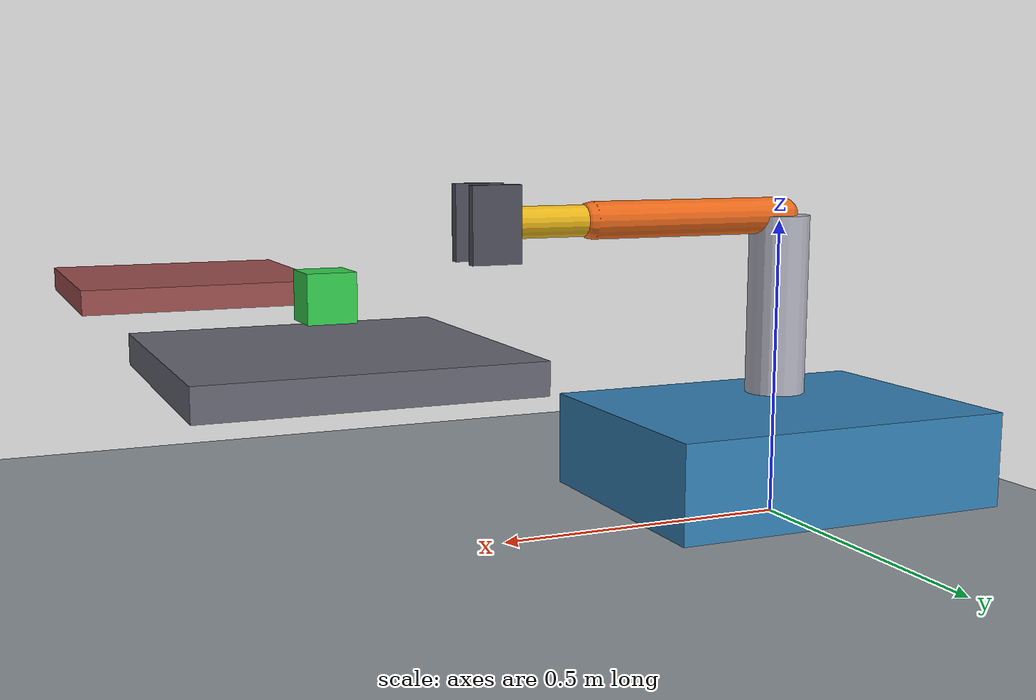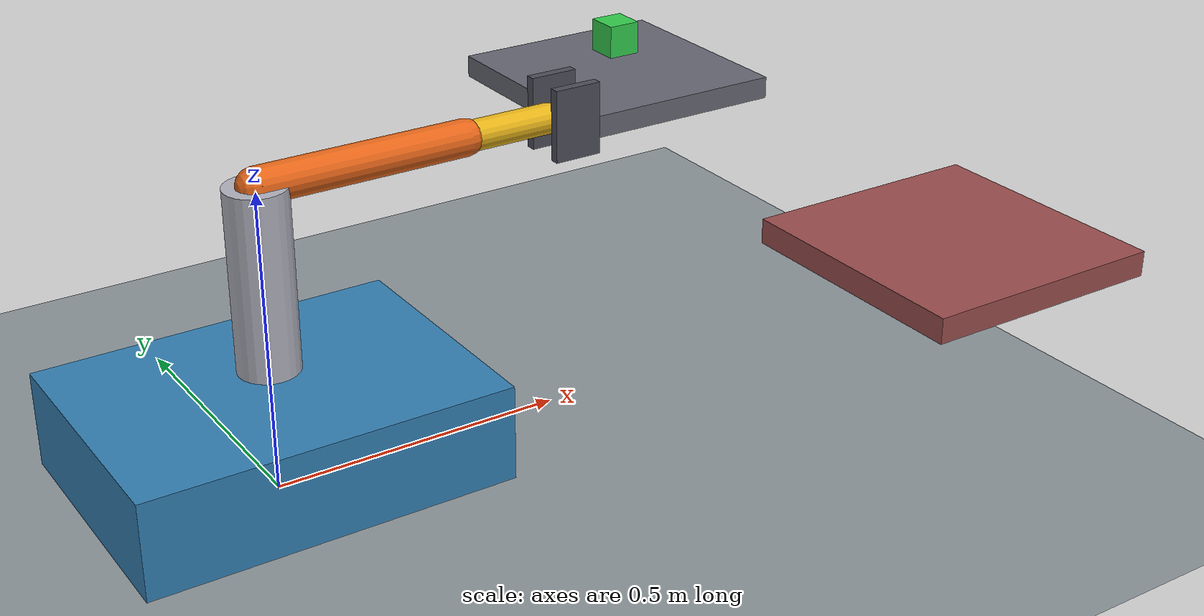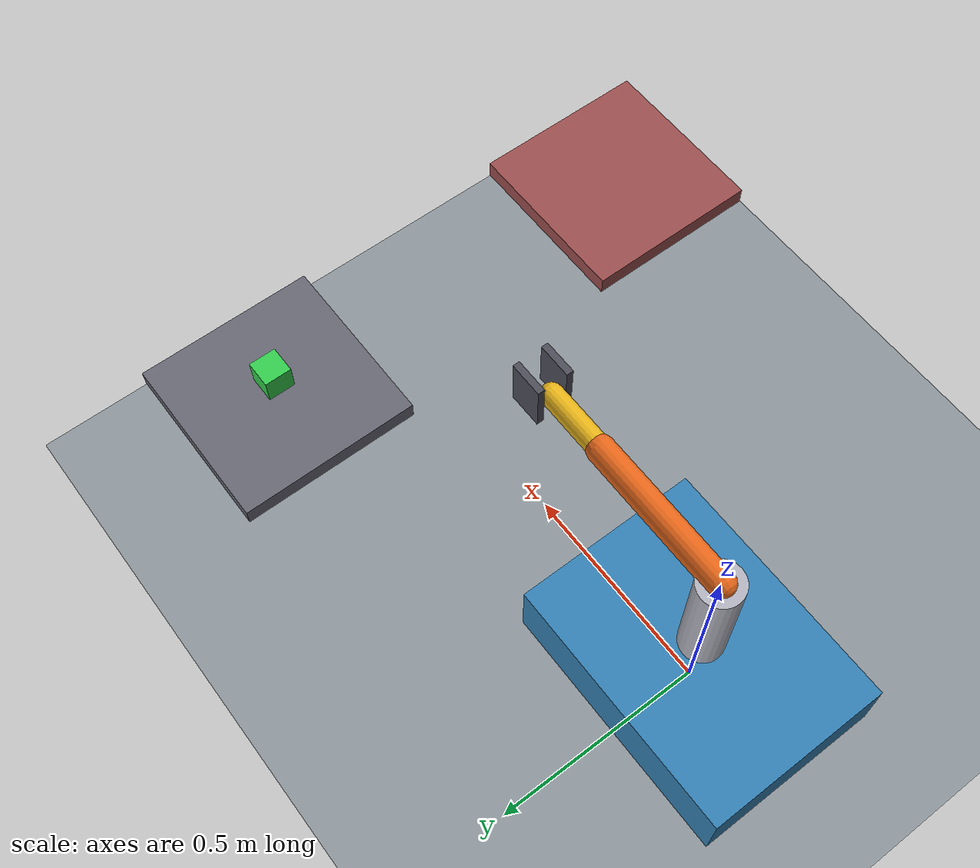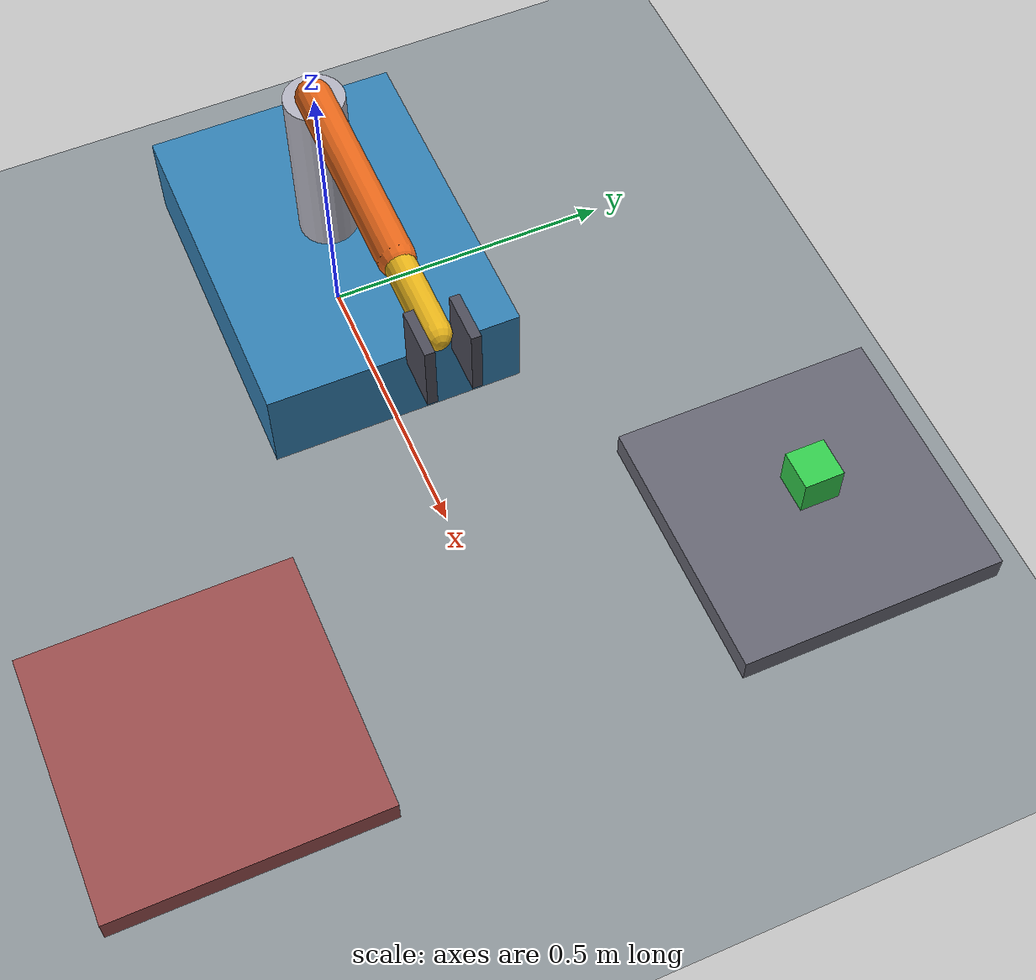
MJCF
<mujoco model="mm_gripper">
  <compiler angle="radian"/>

  <!-- 搬運車 + 三軸手臂 + 二指夾爪（平面底盤簡化） -->

  <worldbody>
    <light pos="0 -2 3" dir="0 0.5 -1"/>
    <geom name="floor" type="plane" size="10 10 0.1" rgba="0.55 0.58 0.60 1" friction="0.7 0.05 0.01"/>

    <body name="base" pos="0 0 0.11">
      <joint name="move_x" type="slide" axis="1 0 0" damping="2"/>
      <joint name="move_y" type="slide" axis="0 1 0" damping="2"/>
      <joint name="yaw"    type="hinge" axis="0 0 1" damping="2"/>
      <geom type="box" size="0.3 0.22 0.08" rgba="0.2 0.5 0.7 1"/>

      <body name="arm_link1" pos="0 0 0.10">
        <joint name="shoulder" type="hinge" axis="0 0 1" damping="0.5"/>
        <geom type="cylinder" size="0.05 0.15" pos="0 0 0.15" rgba="0.7 0.7 0.75 1"/>
        <body name="arm_link2" pos="0 0 0.3">
          <joint name="elbow" type="hinge" axis="0 1 0" damping="0.5" range="-2.8 2.8"/>
          <geom type="capsule" fromto="0 0 0 0.35 0 0" size="0.03" rgba="0.9 0.4 0.1 1"/>
          <body name="arm_link3" pos="0.35 0 0">
            <joint name="wrist" type="hinge" axis="0 1 0" damping="0.3" range="-2.8 2.8"/>
            <geom type="capsule" fromto="0 0 0 0.15 0 0" size="0.025" rgba="0.9 0.7 0.1 1"/>
            <site name="ee" pos="0.15 0 0" size="0.01" rgba="1 0 0 1"/>

            <!-- 二指夾爪：左右滑軌對夾 -->
            <body name="finger_l" pos="0.15 0.035 0">
              <joint name="grip_l" type="slide" axis="0 -1 0" range="0 0.035" damping="0.2"/>
              <geom type="box" size="0.04 0.008 0.06" pos="0.03 0 0" rgba="0.3 0.3 0.35 1" friction="1.2 0.05 0.01"/>
              <inertial pos="0.03 0 0" mass="0.1" diaginertia="0.0001 0.0001 0.0001"/>
            </body>
            <body name="finger_r" pos="0.15 -0.035 0">
              <joint name="grip_r" type="slide" axis="0 1 0" range="0 0.035" damping="0.2"/>
              <geom type="box" size="0.04 0.008 0.06" pos="0.03 0 0" rgba="0.3 0.3 0.35 1" friction="1.2 0.05 0.01"/>
              <inertial pos="0.03 0 0" mass="0.1" diaginertia="0.0001 0.0001 0.0001"/>
            </body>
          </body>
        </body>
      </body>
    </body>

    <!-- A 點：平台上的箱子（要取） -->
    <geom name="table_a" type="box" size="0.2 0.2 0.02" pos="0.9 0.4 0.38" rgba="0.4 0.4 0.45 1"/>
    <body name="box_target" pos="0.9 0.4 0.46">
      <freejoint/>
      <geom type="box" size="0.03 0.03 0.03" rgba="0.2 0.8 0.3 1" mass="0.3" friction="1.0 0.05 0.01"/>
    </body>

    <!-- B 點：放置平台 -->
    <geom name="table_b" type="box" size="0.2 0.2 0.02" pos="0.9 -0.5 0.38" rgba="0.6 0.3 0.3 1"/>
  </worldbody>

  <actuator>
    <velocity name="vx"   joint="move_x" kv="60" ctrlrange="-1.5 1.5"/>
    <velocity name="vy"   joint="move_y" kv="60" ctrlrange="-1.5 1.5"/>
    <velocity name="wyaw" joint="yaw"    kv="10" ctrlrange="-2 2"/>
    <position name="shoulder_ctl" joint="shoulder" kp="200" ctrllimited="true" ctrlrange="-3.14 3.14"/>
    <position name="elbow_ctl"    joint="elbow"    kp="400" ctrllimited="true" ctrlrange="-2.8 2.8"/>
    <position name="wrist_ctl"    joint="wrist"    kp="150"  ctrllimited="true" ctrlrange="-2.8 2.8"/>
    <position name="grip_l_ctl"   joint="grip_l"   kp="300" forcerange="-30 30" ctrllimited="true" ctrlrange="0 0.035"/>
    <position name="grip_r_ctl"   joint="grip_r"   kp="300" forcerange="-30 30" ctrllimited="true" ctrlrange="0 0.035"/>
  </actuator>

  <equality>
    <weld name="grasp" body1="finger_l" body2="box_target" anchor="0.03 0 0" active="false"/>
  </equality>

  <sensor>
    <framepos objtype="site" objname="ee"/>
  </sensor>
</mujoco>
